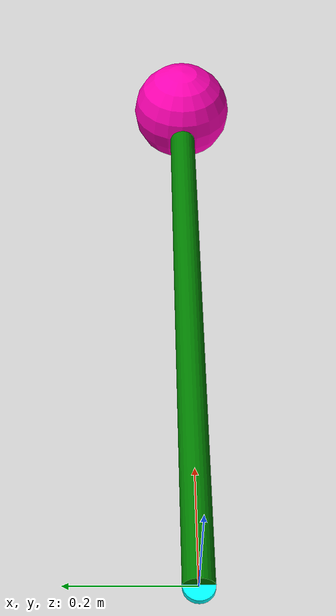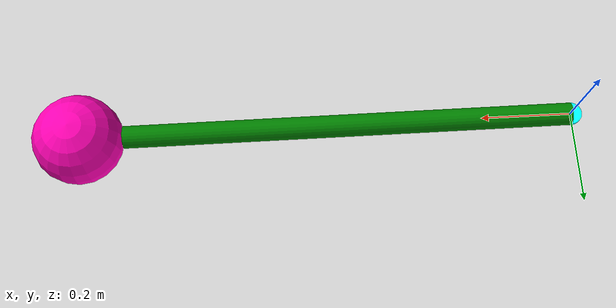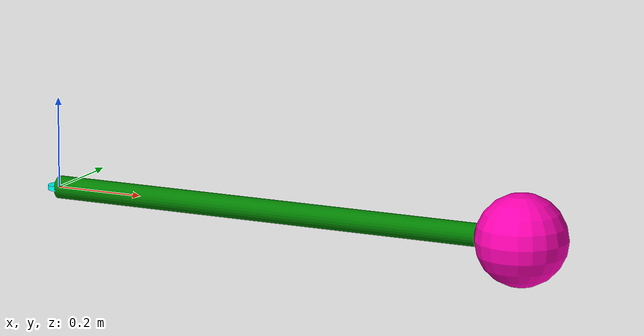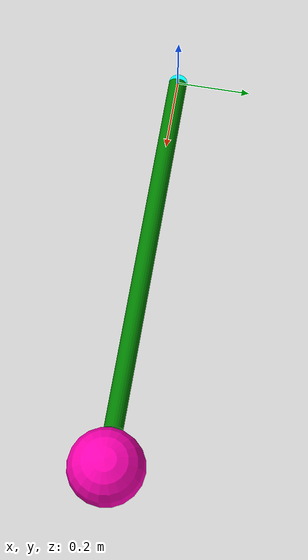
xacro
<?xml version="1.0"?>
<robot xmlns:xacro="http://www.ros.org/wiki/xacro" name="jakes_pendulum">
    <xacro:arg name="initial_positions_file" default="initial_positions.yaml" />

    <!-- Import jakes_pendulum urdf file -->
    <xacro:include filename="$(find moveit_resources_jakes_pendulum_description)/urdf/jakes_pendulum.urdf" />

    <!-- Import control_xacro -->
    <xacro:include filename="jakes_pendulum.ros2_control.xacro" />

    <xacro:jakes_pendulum_ros2_control name="FakeSystem" initial_positions_file="$(arg initial_positions_file)"/>

</robot>

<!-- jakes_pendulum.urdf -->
<robot name="jakes_pendulum">

	<!-- * * * Link Definitions * * * -->

    <link name="base_link">
		<visual>
		    <origin xyz="0 0 0" rpy="0 0 0"/>
			<geometry>
				<cylinder radius="0.025" length="0.01"/>
			</geometry>
			<material name="Cyan1">
	       		<color rgba="0 1 1 1.0"/>
           	</material>
		</visual>
		<collision>
		    <origin xyz="0 0 0" rpy="0 0 0"/>
			<geometry>
				<cylinder radius="0.025" length="0.01"/>
			</geometry>
		</collision>
	</link>

	<link name="upper_arm">
        <visual>
		    <origin xyz="0.5 0 0" rpy="0 1.571 0"/>
			<geometry>
				<cylinder radius="0.025" length="1.0"/>
			</geometry>
			<material name="Blue2">
	       		<color rgba="0 0.5 0 1.0"/>
	        </material>
	    </visual>
		<collision>
            <origin xyz="0.5 0 0" rpy="0 1.571 0"/>
            <geometry>
                <cylinder radius="0.025" length="1.0"/>
            </geometry>
        </collision>
	</link>

	<link name="end_ball">
		<visual>
		    <origin xyz="0.1 0 0" rpy="0 0 0"/>
			<geometry>
				<sphere radius="0.1"/>
			</geometry>
			<material name="Cyan2">
	       		<color rgba="1 0 0.7 1.0"/>
	        </material>
		</visual>
		<collision>
           	<origin xyz="0.1 0 0" rpy="0 0 0"/>
			<geometry>
				<sphere radius="0.1"/>
			</geometry>
        </collision>
	</link>

	<!-- * * * Joint Definitions * * * -->

	<joint name="shoulder_joint" type="revolute">
    	<parent link="base_link"/>
    	<child link="upper_arm"/>
    	<origin xyz="0.0 0 0.0" rpy="0 0 0"/>
        <limit lower="-10" upper="10" effort="10" velocity="3.4"/>
        <axis xyz="0 0 1"/>
	</joint>

	<joint name="end_joint" type="fixed">
    	<parent link="upper_arm"/>
    	<child link="end_ball"/>
    	<origin xyz="1.0 0 0.0" rpy="0 0 0"/>
	</joint>
</robot>
